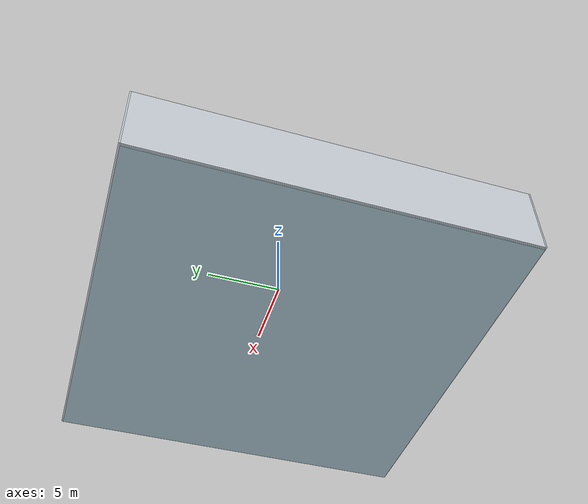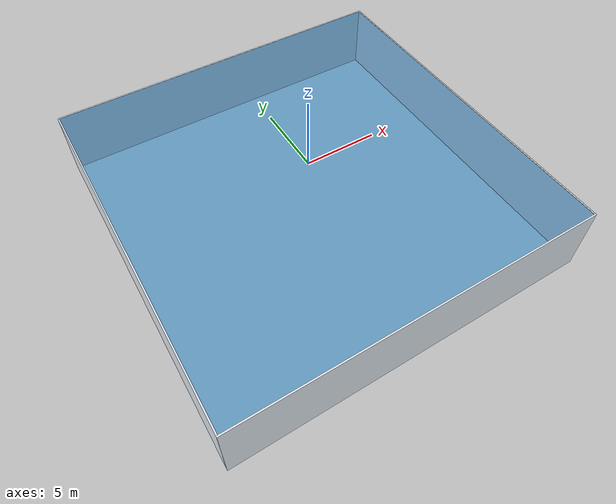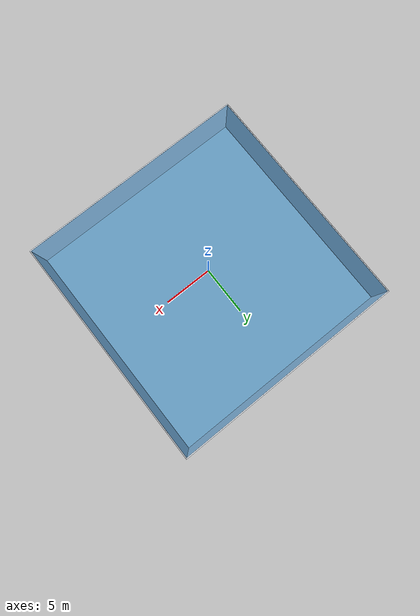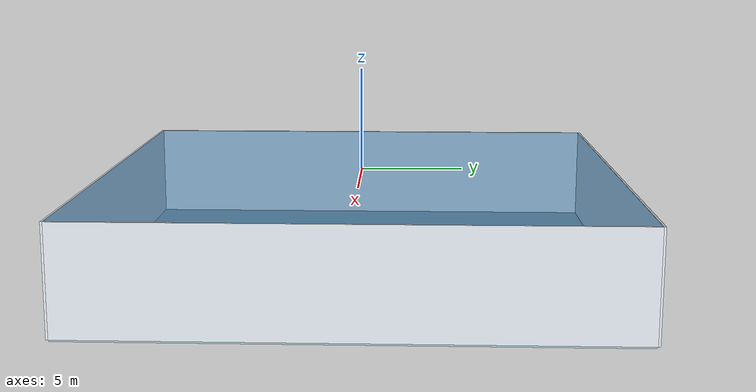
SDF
<?xml version="1.0"?>
<sdf version="1.12">
  <model name="pool">
    <static>true</static>

    <!-- Pool floor -->
    <model name="floor">
      <pose>0 0 -5 0 0 0</pose>
      <static>true</static>
      <link name="link">
        <collision name="collision">
          <geometry>
            <box>
              <size>25 25 0.2</size>
            </box>
          </geometry>
        </collision>
        <visual name="visual">
          <geometry>
            <box>
              <size>25 25 0.2</size>
            </box>
          </geometry>
          <material>
            <ambient>0.6 0.7 0.75 1</ambient>
            <diffuse>0.7 0.8 0.85 1</diffuse>
            <specular>0.3 0.3 0.3 1</specular>
            <pbr>
              <metal>
                <albedo_map>model://pool/materials/textures/pool_floor.png</albedo_map>
                <normal_map>model://pool/materials/textures/pool_floor_normal.png</normal_map>
                <roughness_map>model://pool/materials/textures/pool_floor_roughness.png</roughness_map>
                <metalness>0.0</metalness>
              </metal>
            </pbr>
          </material>
        </visual>
      </link>
    </model>

    <!-- Pool walls -->
    <model name="walls">
      <static>true</static>
      <link name="link">

        <!-- Wall: +X side (at x=12.55) -->
        <collision name="wall_px_collision">
          <pose>12.55 0 -2.5 0 0 0</pose>
          <geometry>
            <box>
              <size>0.1 25 5</size>
            </box>
          </geometry>
        </collision>
        <visual name="wall_px_visual">
          <pose>12.55 0 -2.5 0 0 0</pose>
          <geometry>
            <box>
              <size>0.1 25 5</size>
            </box>
          </geometry>
          <material>
            <ambient>0.8 0.85 0.9 1</ambient>
            <diffuse>0.9 0.93 0.96 1</diffuse>
            <specular>0.3 0.3 0.3 1</specular>
            <pbr>
              <metal>
                <albedo_map>model://pool/materials/textures/pool_tile.png</albedo_map>
                <normal_map>model://pool/materials/textures/pool_tile_normal.png</normal_map>
                <roughness_map>model://pool/materials/textures/pool_tile_roughness.png</roughness_map>
                <metalness>0.0</metalness>
              </metal>
            </pbr>
          </material>
        </visual>

        <!-- Wall: -X side -->
        <collision name="wall_nx_collision">
          <pose>-12.55 0 -2.5 0 0 0</pose>
          <geometry>
            <box>
              <size>0.1 25 5</size>
            </box>
          </geometry>
        </collision>
        <visual name="wall_nx_visual">
          <pose>-12.55 0 -2.5 0 0 0</pose>
          <geometry>
            <box>
              <size>0.1 25 5</size>
            </box>
          </geometry>
          <material>
            <ambient>0.8 0.85 0.9 1</ambient>
            <diffuse>0.9 0.93 0.96 1</diffuse>
            <specular>0.3 0.3 0.3 1</specular>
            <pbr>
              <metal>
                <albedo_map>model://pool/materials/textures/pool_tile.png</albedo_map>
                <normal_map>model://pool/materials/textures/pool_tile_normal.png</normal_map>
                <roughness_map>model://pool/materials/textures/pool_tile_roughness.png</roughness_map>
                <metalness>0.0</metalness>
              </metal>
            </pbr>
          </material>
        </visual>

        <!-- Wall: +Y side (at y=12.55) -->
        <collision name="wall_py_collision">
          <pose>0 12.55 -2.5 0 0 0</pose>
          <geometry>
            <box>
              <size>25.2 0.1 5</size>
            </box>
          </geometry>
        </collision>
        <visual name="wall_py_visual">
          <pose>0 12.55 -2.5 0 0 0</pose>
          <geometry>
            <box>
              <size>25.2 0.1 5</size>
            </box>
          </geometry>
          <material>
            <ambient>0.8 0.85 0.9 1</ambient>
            <diffuse>0.9 0.93 0.96 1</diffuse>
            <specular>0.3 0.3 0.3 1</specular>
            <pbr>
              <metal>
                <albedo_map>model://pool/materials/textures/pool_tile.png</albedo_map>
                <normal_map>model://pool/materials/textures/pool_tile_normal.png</normal_map>
                <roughness_map>model://pool/materials/textures/pool_tile_roughness.png</roughness_map>
                <metalness>0.0</metalness>
              </metal>
            </pbr>
          </material>
        </visual>

        <!-- Wall: -Y side -->
        <collision name="wall_ny_collision">
          <pose>0 -12.55 -2.5 0 0 0</pose>
          <geometry>
            <box>
              <size>25.2 0.1 5</size>
            </box>
          </geometry>
        </collision>
        <visual name="wall_ny_visual">
          <pose>0 -12.55 -2.5 0 0 0</pose>
          <geometry>
            <box>
              <size>25.2 0.1 5</size>
            </box>
          </geometry>
          <material>
            <ambient>0.8 0.85 0.9 1</ambient>
            <diffuse>0.9 0.93 0.96 1</diffuse>
            <specular>0.3 0.3 0.3 1</specular>
            <pbr>
              <metal>
                <albedo_map>model://pool/materials/textures/pool_tile.png</albedo_map>
                <normal_map>model://pool/materials/textures/pool_tile_normal.png</normal_map>
                <roughness_map>model://pool/materials/textures/pool_tile_roughness.png</roughness_map>
                <metalness>0.0</metalness>
              </metal>
            </pbr>
          </material>
        </visual>

      </link>
    </model>

    <!-- Water volume (visual only - semi-transparent blue) -->
    <model name="water">
      <static>true</static>
      <pose>0 0 -2.505 0 0 0</pose>
      <link name="link">
        <visual name="visual">
          <geometry>
            <box>
              <size>25 25 4.99</size>
            </box>
          </geometry>
          <transparency>0.6</transparency>
          <material>
            <ambient>0.0 0.3 0.5 1</ambient>
            <diffuse>0.0 0.4 0.7 1</diffuse>
            <specular>0.2 0.3 0.4 1</specular>
          </material>
        </visual>
      </link>
    </model>

  </model>
</sdf>
